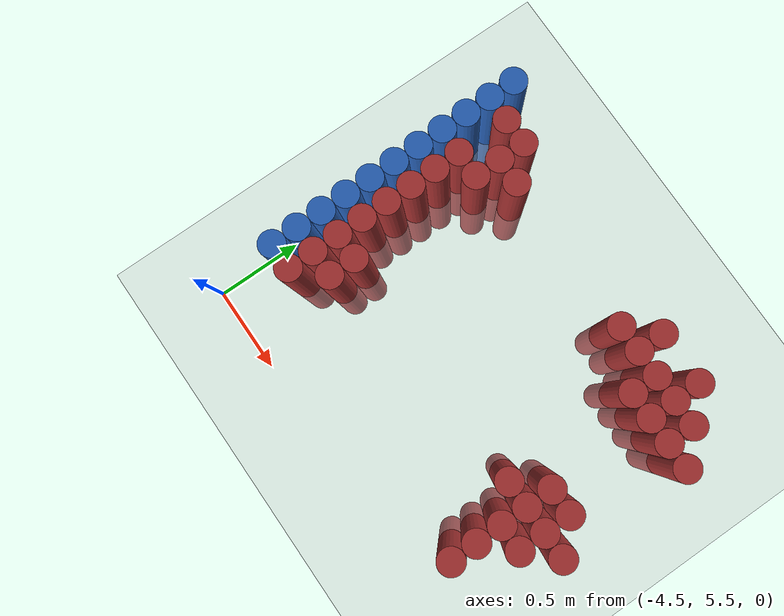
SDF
<sdf version="1.6">
 <world name="default">
  <model name="ground_plane">
   <static>1</static>
   <link name="link">
    <collision name="collision">
     <geometry><plane><normal>0 0 1</normal><size>100 100</size></plane></geometry>
     <surface><friction><ode><mu>100</mu><mu2>50</mu2></ode></friction></surface>
    </collision>
    <visual name="visual">
     <cast_shadows>0</cast_shadows>
     <geometry><plane><normal>0 0 1</normal><size>100 100</size></plane></geometry>
     <material>
      <script><uri>file://media/materials/scripts/gazebo.material</uri><name>Gazebo/Grey</name></script>
     </material>
    </visual>
   </link>
  </model>
  <model name="unit_cylinder_101">
   <static>1</static>
   <pose>-4.425000 5.925000 0.000000 0.000000 0.000000 0.000000</pose>
   <link name="link">
    <inertial>
     <mass>1</mass>
     <inertia><ixx>0.145833</ixx><ixy>0</ixy><ixz>0</ixz><iyy>0.145833</iyy><iyz>0</iyz><izz>0.125</izz></inertia>
    </inertial>
    <collision name="collision">
     <geometry><cylinder><radius>0.075000</radius><length>1</length></cylinder></geometry>
    </collision>
    <visual name="visual">
     <geometry><cylinder><radius>0.075000</radius><length>1</length></cylinder></geometry>
     <material>
      <ambient>0.152000 0.379000 0.720000 1</ambient>
      <diffuse>0.152000 0.379000 0.720000 1</diffuse>
     </material>
     <material>
      <script><name>Gazebo/Grey</name><uri>file://media/materials/scripts/gazebo.material</uri></script>
     </material>
    </visual>
   </link>
  </model>
  <model name="unit_cylinder_102">
   <static>1</static>
   <pose>-4.425000 6.075000 0.000000 0.000000 0.000000 0.000000</pose>
   <link name="link">
    <inertial>
     <mass>1</mass>
     <inertia><ixx>0.145833</ixx><ixy>0</ixy><ixz>0</ixz><iyy>0.145833</iyy><iyz>0</iyz><izz>0.125</izz></inertia>
    </inertial>
    <collision name="collision">
     <geometry><cylinder><radius>0.075000</radius><length>1</length></cylinder></geometry>
    </collision>
    <visual name="visual">
     <geometry><cylinder><radius>0.075000</radius><length>1</length></cylinder></geometry>
     <material>
      <ambient>0.152000 0.379000 0.720000 1</ambient>
      <diffuse>0.152000 0.379000 0.720000 1</diffuse>
     </material>
     <material>
      <script><name>Gazebo/Grey</name><uri>file://media/materials/scripts/gazebo.material</uri></script>
     </material>
    </visual>
   </link>
  </model>
  <model name="unit_cylinder_103">
   <static>1</static>
   <pose>-4.425000 6.225000 0.000000 0.000000 0.000000 0.000000</pose>
   <link name="link">
    <inertial>
     <mass>1</mass>
     <inertia><ixx>0.145833</ixx><ixy>0</ixy><ixz>0</ixz><iyy>0.145833</iyy><iyz>0</iyz><izz>0.125</izz></inertia>
    </inertial>
    <collision name="collision">
     <geometry><cylinder><radius>0.075000</radius><length>1</length></cylinder></geometry>
    </collision>
    <visual name="visual">
     <geometry><cylinder><radius>0.075000</radius><length>1</length></cylinder></geometry>
     <material>
      <ambient>0.152000 0.379000 0.720000 1</ambient>
      <diffuse>0.152000 0.379000 0.720000 1</diffuse>
     </material>
     <material>
      <script><name>Gazebo/Grey</name><uri>file://media/materials/scripts/gazebo.material</uri></script>
     </material>
    </visual>
   </link>
  </model>
  <model name="unit_cylinder_104">
   <static>1</static>
   <pose>-4.425000 6.375000 0.000000 0.000000 0.000000 0.000000</pose>
   <link name="link">
    <inertial>
     <mass>1</mass>
     <inertia><ixx>0.145833</ixx><ixy>0</ixy><ixz>0</ixz><iyy>0.145833</iyy><iyz>0</iyz><izz>0.125</izz></inertia>
    </inertial>
    <collision name="collision">
     <geometry><cylinder><radius>0.075000</radius><length>1</length></cylinder></geometry>
    </collision>
    <visual name="visual">
     <geometry><cylinder><radius>0.075000</radius><length>1</length></cylinder></geometry>
     <material>
      <ambient>0.152000 0.379000 0.720000 1</ambient>
      <diffuse>0.152000 0.379000 0.720000 1</diffuse>
     </material>
     <material>
      <script><name>Gazebo/Grey</name><uri>file://media/materials/scripts/gazebo.material</uri></script>
     </material>
    </visual>
   </link>
  </model>
  <model name="unit_cylinder_105">
   <static>1</static>
   <pose>-4.425000 6.525000 0.000000 0.000000 0.000000 0.000000</pose>
   <link name="link">
    <inertial>
     <mass>1</mass>
     <inertia><ixx>0.145833</ixx><ixy>0</ixy><ixz>0</ixz><iyy>0.145833</iyy><iyz>0</iyz><izz>0.125</izz></inertia>
    </inertial>
    <collision name="collision">
     <geometry><cylinder><radius>0.075000</radius><length>1</length></cylinder></geometry>
    </collision>
    <visual name="visual">
     <geometry><cylinder><radius>0.075000</radius><length>1</length></cylinder></geometry>
     <material>
      <ambient>0.152000 0.379000 0.720000 1</ambient>
      <diffuse>0.152000 0.379000 0.720000 1</diffuse>
     </material>
     <material>
      <script><name>Gazebo/Grey</name><uri>file://media/materials/scripts/gazebo.material</uri></script>
     </material>
    </visual>
   </link>
  </model>
  <model name="unit_cylinder_106">
   <static>1</static>
   <pose>-4.425000 6.675000 0.000000 0.000000 0.000000 0.000000</pose>
   <link name="link">
    <inertial>
     <mass>1</mass>
     <inertia><ixx>0.145833</ixx><ixy>0</ixy><ixz>0</ixz><iyy>0.145833</iyy><iyz>0</iyz><izz>0.125</izz></inertia>
    </inertial>
    <collision name="collision">
     <geometry><cylinder><radius>0.075000</radius><length>1</length></cylinder></geometry>
    </collision>
    <visual name="visual">
     <geometry><cylinder><radius>0.075000</radius><length>1</length></cylinder></geometry>
     <material>
      <ambient>0.152000 0.379000 0.720000 1</ambient>
      <diffuse>0.152000 0.379000 0.720000 1</diffuse>
     </material>
     <material>
      <script><name>Gazebo/Grey</name><uri>file://media/materials/scripts/gazebo.material</uri></script>
     </material>
    </visual>
   </link>
  </model>
  <model name="unit_cylinder_107">
   <static>1</static>
   <pose>-4.425000 6.825000 0.000000 0.000000 0.000000 0.000000</pose>
   <link name="link">
    <inertial>
     <mass>1</mass>
     <inertia><ixx>0.145833</ixx><ixy>0</ixy><ixz>0</ixz><iyy>0.145833</iyy><iyz>0</iyz><izz>0.125</izz></inertia>
    </inertial>
    <collision name="collision">
     <geometry><cylinder><radius>0.075000</radius><length>1</length></cylinder></geometry>
    </collision>
    <visual name="visual">
     <geometry><cylinder><radius>0.075000</radius><length>1</length></cylinder></geometry>
     <material>
      <ambient>0.152000 0.379000 0.720000 1</ambient>
      <diffuse>0.152000 0.379000 0.720000 1</diffuse>
     </material>
     <material>
      <script><name>Gazebo/Grey</name><uri>file://media/materials/scripts/gazebo.material</uri></script>
     </material>
    </visual>
   </link>
  </model>
  <model name="unit_cylinder_108">
   <static>1</static>
   <pose>-4.425000 6.975000 0.000000 0.000000 0.000000 0.000000</pose>
   <link name="link">
    <inertial>
     <mass>1</mass>
     <inertia><ixx>0.145833</ixx><ixy>0</ixy><ixz>0</ixz><iyy>0.145833</iyy><iyz>0</iyz><izz>0.125</izz></inertia>
    </inertial>
    <collision name="collision">
     <geometry><cylinder><radius>0.075000</radius><length>1</length></cylinder></geometry>
    </collision>
    <visual name="visual">
     <geometry><cylinder><radius>0.075000</radius><length>1</length></cylinder></geometry>
     <material>
      <ambient>0.152000 0.379000 0.720000 1</ambient>
      <diffuse>0.152000 0.379000 0.720000 1</diffuse>
     </material>
     <material>
      <script><name>Gazebo/Grey</name><uri>file://media/materials/scripts/gazebo.material</uri></script>
     </material>
    </visual>
   </link>
  </model>
  <model name="unit_cylinder_109">
   <static>1</static>
   <pose>-4.425000 7.125000 0.000000 0.000000 0.000000 0.000000</pose>
   <link name="link">
    <inertial>
     <mass>1</mass>
     <inertia><ixx>0.145833</ixx><ixy>0</ixy><ixz>0</ixz><iyy>0.145833</iyy><iyz>0</iyz><izz>0.125</izz></inertia>
    </inertial>
    <collision name="collision">
     <geometry><cylinder><radius>0.075000</radius><length>1</length></cylinder></geometry>
    </collision>
    <visual name="visual">
     <geometry><cylinder><radius>0.075000</radius><length>1</length></cylinder></geometry>
     <material>
      <ambient>0.152000 0.379000 0.720000 1</ambient>
      <diffuse>0.152000 0.379000 0.720000 1</diffuse>
     </material>
     <material>
      <script><name>Gazebo/Grey</name><uri>file://media/materials/scripts/gazebo.material</uri></script>
     </material>
    </visual>
   </link>
  </model>
  <model name="unit_cylinder_110">
   <static>1</static>
   <pose>-4.425000 7.275000 0.000000 0.000000 0.000000 0.000000</pose>
   <link name="link">
    <inertial>
     <mass>1</mass>
     <inertia><ixx>0.145833</ixx><ixy>0</ixy><ixz>0</ixz><iyy>0.145833</iyy><iyz>0</iyz><izz>0.125</izz></inertia>
    </inertial>
    <collision name="collision">
     <geometry><cylinder><radius>0.075000</radius><length>1</length></cylinder></geometry>
    </collision>
    <visual name="visual">
     <geometry><cylinder><radius>0.075000</radius><length>1</length></cylinder></geometry>
     <material>
      <ambient>0.152000 0.379000 0.720000 1</ambient>
      <diffuse>0.152000 0.379000 0.720000 1</diffuse>
     </material>
     <material>
      <script><name>Gazebo/Grey</name><uri>file://media/materials/scripts/gazebo.material</uri></script>
     </material>
    </visual>
   </link>
  </model>
  <model name="unit_cylinder_111">
   <static>1</static>
   <pose>-4.425000 7.425000 0.000000 0.000000 0.000000 0.000000</pose>
   <link name="link">
    <inertial>
     <mass>1</mass>
     <inertia><ixx>0.145833</ixx><ixy>0</ixy><ixz>0</ixz><iyy>0.145833</iyy><iyz>0</iyz><izz>0.125</izz></inertia>
    </inertial>
    <collision name="collision">
     <geometry><cylinder><radius>0.075000</radius><length>1</length></cylinder></geometry>
    </collision>
    <visual name="visual">
     <geometry><cylinder><radius>0.075000</radius><length>1</length></cylinder></geometry>
     <material>
      <ambient>0.152000 0.379000 0.720000 1</ambient>
      <diffuse>0.152000 0.379000 0.720000 1</diffuse>
     </material>
     <material>
      <script><name>Gazebo/Grey</name><uri>file://media/materials/scripts/gazebo.material</uri></script>
     </material>
    </visual>
   </link>
  </model>
  <model name="unit_cylinder_129">
   <static>1</static>
   <pose>-4.275000 5.925000 0.000000 0.000000 0.000000 0.000000</pose>
   <link name="link">
    <inertial>
     <mass>1</mass>
     <inertia><ixx>0.145833</ixx><ixy>0</ixy><ixz>0</ixz><iyy>0.145833</iyy><iyz>0</iyz><izz>0.125</izz></inertia>
    </inertial>
    <collision name="collision">
     <geometry><cylinder><radius>0.075000</radius><length>1</length></cylinder></geometry>
    </collision>
    <visual name="visual">
     <geometry><cylinder><radius>0.075000</radius><length>1</length></cylinder></geometry>
     <material>
      <ambient>0.648000 0.192000 0.192000 1</ambient>
      <diffuse>0.648000 0.192000 0.192000 1</diffuse>
     </material>
     <material>
      <script><name>Gazebo/Grey</name><uri>file://media/materials/scripts/gazebo.material</uri></script>
     </material>
    </visual>
   </link>
  </model>
  <model name="unit_cylinder_130">
   <static>1</static>
   <pose>-4.275000 6.075000 0.000000 0.000000 0.000000 0.000000</pose>
   <link name="link">
    <inertial>
     <mass>1</mass>
     <inertia><ixx>0.145833</ixx><ixy>0</ixy><ixz>0</ixz><iyy>0.145833</iyy><iyz>0</iyz><izz>0.125</izz></inertia>
    </inertial>
    <collision name="collision">
     <geometry><cylinder><radius>0.075000</radius><length>1</length></cylinder></geometry>
    </collision>
    <visual name="visual">
     <geometry><cylinder><radius>0.075000</radius><length>1</length></cylinder></geometry>
     <material>
      <ambient>0.648000 0.192000 0.192000 1</ambient>
      <diffuse>0.648000 0.192000 0.192000 1</diffuse>
     </material>
     <material>
      <script><name>Gazebo/Grey</name><uri>file://media/materials/scripts/gazebo.material</uri></script>
     </material>
    </visual>
   </link>
  </model>
  <model name="unit_cylinder_131">
   <static>1</static>
   <pose>-4.275000 6.225000 0.000000 0.000000 0.000000 0.000000</pose>
   <link name="link">
    <inertial>
     <mass>1</mass>
     <inertia><ixx>0.145833</ixx><ixy>0</ixy><ixz>0</ixz><iyy>0.145833</iyy><iyz>0</iyz><izz>0.125</izz></inertia>
    </inertial>
    <collision name="collision">
     <geometry><cylinder><radius>0.075000</radius><length>1</length></cylinder></geometry>
    </collision>
    <visual name="visual">
     <geometry><cylinder><radius>0.075000</radius><length>1</length></cylinder></geometry>
     <material>
      <ambient>0.648000 0.192000 0.192000 1</ambient>
      <diffuse>0.648000 0.192000 0.192000 1</diffuse>
     </material>
     <material>
      <script><name>Gazebo/Grey</name><uri>file://media/materials/scripts/gazebo.material</uri></script>
     </material>
    </visual>
   </link>
  </model>
  <model name="unit_cylinder_132">
   <static>1</static>
   <pose>-4.275000 6.375000 0.000000 0.000000 0.000000 0.000000</pose>
   <link name="link">
    <inertial>
     <mass>1</mass>
     <inertia><ixx>0.145833</ixx><ixy>0</ixy><ixz>0</ixz><iyy>0.145833</iyy><iyz>0</iyz><izz>0.125</izz></inertia>
    </inertial>
    <collision name="collision">
     <geometry><cylinder><radius>0.075000</radius><length>1</length></cylinder></geometry>
    </collision>
    <visual name="visual">
     <geometry><cylinder><radius>0.075000</radius><length>1</length></cylinder></geometry>
     <material>
      <ambient>0.648000 0.192000 0.192000 1</ambient>
      <diffuse>0.648000 0.192000 0.192000 1</diffuse>
     </material>
     <material>
      <script><name>Gazebo/Grey</name><uri>file://media/materials/scripts/gazebo.material</uri></script>
     </material>
    </visual>
   </link>
  </model>
  <model name="unit_cylinder_133">
   <static>1</static>
   <pose>-4.275000 6.525000 0.000000 0.000000 0.000000 0.000000</pose>
   <link name="link">
    <inertial>
     <mass>1</mass>
     <inertia><ixx>0.145833</ixx><ixy>0</ixy><ixz>0</ixz><iyy>0.145833</iyy><iyz>0</iyz><izz>0.125</izz></inertia>
    </inertial>
    <collision name="collision">
     <geometry><cylinder><radius>0.075000</radius><length>1</length></cylinder></geometry>
    </collision>
    <visual name="visual">
     <geometry><cylinder><radius>0.075000</radius><length>1</length></cylinder></geometry>
     <material>
      <ambient>0.648000 0.192000 0.192000 1</ambient>
      <diffuse>0.648000 0.192000 0.192000 1</diffuse>
     </material>
     <material>
      <script><name>Gazebo/Grey</name><uri>file://media/materials/scripts/gazebo.material</uri></script>
     </material>
    </visual>
   </link>
  </model>
  <model name="unit_cylinder_134">
   <static>1</static>
   <pose>-4.275000 6.675000 0.000000 0.000000 0.000000 0.000000</pose>
   <link name="link">
    <inertial>
     <mass>1</mass>
     <inertia><ixx>0.145833</ixx><ixy>0</ixy><ixz>0</ixz><iyy>0.145833</iyy><iyz>0</iyz><izz>0.125</izz></inertia>
    </inertial>
    <collision name="collision">
     <geometry><cylinder><radius>0.075000</radius><length>1</length></cylinder></geometry>
    </collision>
    <visual name="visual">
     <geometry><cylinder><radius>0.075000</radius><length>1</length></cylinder></geometry>
     <material>
      <ambient>0.648000 0.192000 0.192000 1</ambient>
      <diffuse>0.648000 0.192000 0.192000 1</diffuse>
     </material>
     <material>
      <script><name>Gazebo/Grey</name><uri>file://media/materials/scripts/gazebo.material</uri></script>
     </material>
    </visual>
   </link>
  </model>
  <model name="unit_cylinder_135">
   <static>1</static>
   <pose>-4.275000 6.825000 0.000000 0.000000 0.000000 0.000000</pose>
   <link name="link">
    <inertial>
     <mass>1</mass>
     <inertia><ixx>0.145833</ixx><ixy>0</ixy><ixz>0</ixz><iyy>0.145833</iyy><iyz>0</iyz><izz>0.125</izz></inertia>
    </inertial>
    <collision name="collision">
     <geometry><cylinder><radius>0.075000</radius><length>1</length></cylinder></geometry>
    </collision>
    <visual name="visual">
     <geometry><cylinder><radius>0.075000</radius><length>1</length></cylinder></geometry>
     <material>
      <ambient>0.648000 0.192000 0.192000 1</ambient>
      <diffuse>0.648000 0.192000 0.192000 1</diffuse>
     </material>
     <material>
      <script><name>Gazebo/Grey</name><uri>file://media/materials/scripts/gazebo.material</uri></script>
     </material>
    </visual>
   </link>
  </model>
  <model name="unit_cylinder_136">
   <static>1</static>
   <pose>-4.275000 6.975000 0.000000 0.000000 0.000000 0.000000</pose>
   <link name="link">
    <inertial>
     <mass>1</mass>
     <inertia><ixx>0.145833</ixx><ixy>0</ixy><ixz>0</ixz><iyy>0.145833</iyy><iyz>0</iyz><izz>0.125</izz></inertia>
    </inertial>
    <collision name="collision">
     <geometry><cylinder><radius>0.075000</radius><length>1</length></cylinder></geometry>
    </collision>
    <visual name="visual">
     <geometry><cylinder><radius>0.075000</radius><length>1</length></cylinder></geometry>
     <material>
      <ambient>0.648000 0.192000 0.192000 1</ambient>
      <diffuse>0.648000 0.192000 0.192000 1</diffuse>
     </material>
     <material>
      <script><name>Gazebo/Grey</name><uri>file://media/materials/scripts/gazebo.material</uri></script>
     </material>
    </visual>
   </link>
  </model>
  <model name="unit_cylinder_137">
   <static>1</static>
   <pose>-4.275000 7.275000 0.000000 0.000000 0.000000 0.000000</pose>
   <link name="link">
    <inertial>
     <mass>1</mass>
     <inertia><ixx>0.145833</ixx><ixy>0</ixy><ixz>0</ixz><iyy>0.145833</iyy><iyz>0</iyz><izz>0.125</izz></inertia>
    </inertial>
    <collision name="collision">
     <geometry><cylinder><radius>0.075000</radius><length>1</length></cylinder></geometry>
    </collision>
    <visual name="visual">
     <geometry><cylinder><radius>0.075000</radius><length>1</length></cylinder></geometry>
     <material>
      <ambient>0.648000 0.192000 0.192000 1</ambient>
      <diffuse>0.648000 0.192000 0.192000 1</diffuse>
     </material>
     <material>
      <script><name>Gazebo/Grey</name><uri>file://media/materials/scripts/gazebo.material</uri></script>
     </material>
    </visual>
   </link>
  </model>
  <model name="unit_cylinder_149">
   <static>1</static>
   <pose>-4.125000 6.075000 0.000000 0.000000 0.000000 0.000000</pose>
   <link name="link">
    <inertial>
     <mass>1</mass>
     <inertia><ixx>0.145833</ixx><ixy>0</ixy><ixz>0</ixz><iyy>0.145833</iyy><iyz>0</iyz><izz>0.125</izz></inertia>
    </inertial>
    <collision name="collision">
     <geometry><cylinder><radius>0.075000</radius><length>1</length></cylinder></geometry>
    </collision>
    <visual name="visual">
     <geometry><cylinder><radius>0.075000</radius><length>1</length></cylinder></geometry>
     <material>
      <ambient>0.648000 0.192000 0.192000 1</ambient>
      <diffuse>0.648000 0.192000 0.192000 1</diffuse>
     </material>
     <material>
      <script><name>Gazebo/Grey</name><uri>file://media/materials/scripts/gazebo.material</uri></script>
     </material>
    </visual>
   </link>
  </model>
  <model name="unit_cylinder_150">
   <static>1</static>
   <pose>-4.125000 6.225000 0.000000 0.000000 0.000000 0.000000</pose>
   <link name="link">
    <inertial>
     <mass>1</mass>
     <inertia><ixx>0.145833</ixx><ixy>0</ixy><ixz>0</ixz><iyy>0.145833</iyy><iyz>0</iyz><izz>0.125</izz></inertia>
    </inertial>
    <collision name="collision">
     <geometry><cylinder><radius>0.075000</radius><length>1</length></cylinder></geometry>
    </collision>
    <visual name="visual">
     <geometry><cylinder><radius>0.075000</radius><length>1</length></cylinder></geometry>
     <material>
      <ambient>0.648000 0.192000 0.192000 1</ambient>
      <diffuse>0.648000 0.192000 0.192000 1</diffuse>
     </material>
     <material>
      <script><name>Gazebo/Grey</name><uri>file://media/materials/scripts/gazebo.material</uri></script>
     </material>
    </visual>
   </link>
  </model>
  <model name="unit_cylinder_151">
   <static>1</static>
   <pose>-4.125000 6.975000 0.000000 0.000000 0.000000 0.000000</pose>
   <link name="link">
    <inertial>
     <mass>1</mass>
     <inertia><ixx>0.145833</ixx><ixy>0</ixy><ixz>0</ixz><iyy>0.145833</iyy><iyz>0</iyz><izz>0.125</izz></inertia>
    </inertial>
    <collision name="collision">
     <geometry><cylinder><radius>0.075000</radius><length>1</length></cylinder></geometry>
    </collision>
    <visual name="visual">
     <geometry><cylinder><radius>0.075000</radius><length>1</length></cylinder></geometry>
     <material>
      <ambient>0.648000 0.192000 0.192000 1</ambient>
      <diffuse>0.648000 0.192000 0.192000 1</diffuse>
     </material>
     <material>
      <script><name>Gazebo/Grey</name><uri>file://media/materials/scripts/gazebo.material</uri></script>
     </material>
    </visual>
   </link>
  </model>
  <model name="unit_cylinder_152">
   <static>1</static>
   <pose>-4.125000 7.125000 0.000000 0.000000 0.000000 0.000000</pose>
   <link name="link">
    <inertial>
     <mass>1</mass>
     <inertia><ixx>0.145833</ixx><ixy>0</ixy><ixz>0</ixz><iyy>0.145833</iyy><iyz>0</iyz><izz>0.125</izz></inertia>
    </inertial>
    <collision name="collision">
     <geometry><cylinder><radius>0.075000</radius><length>1</length></cylinder></geometry>
    </collision>
    <visual name="visual">
     <geometry><cylinder><radius>0.075000</radius><length>1</length></cylinder></geometry>
     <material>
      <ambient>0.648000 0.192000 0.192000 1</ambient>
      <diffuse>0.648000 0.192000 0.192000 1</diffuse>
     </material>
     <material>
      <script><name>Gazebo/Grey</name><uri>file://media/materials/scripts/gazebo.material</uri></script>
     </material>
    </visual>
   </link>
  </model>
  <model name="unit_cylinder_153">
   <static>1</static>
   <pose>-4.125000 7.275000 0.000000 0.000000 0.000000 0.000000</pose>
   <link name="link">
    <inertial>
     <mass>1</mass>
     <inertia><ixx>0.145833</ixx><ixy>0</ixy><ixz>0</ixz><iyy>0.145833</iyy><iyz>0</iyz><izz>0.125</izz></inertia>
    </inertial>
    <collision name="collision">
     <geometry><cylinder><radius>0.075000</radius><length>1</length></cylinder></geometry>
    </collision>
    <visual name="visual">
     <geometry><cylinder><radius>0.075000</radius><length>1</length></cylinder></geometry>
     <material>
      <ambient>0.648000 0.192000 0.192000 1</ambient>
      <diffuse>0.648000 0.192000 0.192000 1</diffuse>
     </material>
     <material>
      <script><name>Gazebo/Grey</name><uri>file://media/materials/scripts/gazebo.material</uri></script>
     </material>
    </visual>
   </link>
  </model>
  <model name="unit_cylinder_158">
   <static>1</static>
   <pose>-3.975000 7.125000 0.000000 0.000000 0.000000 0.000000</pose>
   <link name="link">
    <inertial>
     <mass>1</mass>
     <inertia><ixx>0.145833</ixx><ixy>0</ixy><ixz>0</ixz><iyy>0.145833</iyy><iyz>0</iyz><izz>0.125</izz></inertia>
    </inertial>
    <collision name="collision">
     <geometry><cylinder><radius>0.075000</radius><length>1</length></cylinder></geometry>
    </collision>
    <visual name="visual">
     <geometry><cylinder><radius>0.075000</radius><length>1</length></cylinder></geometry>
     <material>
      <ambient>0.648000 0.192000 0.192000 1</ambient>
      <diffuse>0.648000 0.192000 0.192000 1</diffuse>
     </material>
     <material>
      <script><name>Gazebo/Grey</name><uri>file://media/materials/scripts/gazebo.material</uri></script>
     </material>
    </visual>
   </link>
  </model>
  <model name="unit_cylinder_161">
   <static>1</static>
   <pose>-3.075000 7.125000 0.000000 0.000000 0.000000 0.000000</pose>
   <link name="link">
    <inertial>
     <mass>1</mass>
     <inertia><ixx>0.145833</ixx><ixy>0</ixy><ixz>0</ixz><iyy>0.145833</iyy><iyz>0</iyz><izz>0.125</izz></inertia>
    </inertial>
    <collision name="collision">
     <geometry><cylinder><radius>0.075000</radius><length>1</length></cylinder></geometry>
    </collision>
    <visual name="visual">
     <geometry><cylinder><radius>0.075000</radius><length>1</length></cylinder></geometry>
     <material>
      <ambient>0.648000 0.192000 0.192000 1</ambient>
      <diffuse>0.648000 0.192000 0.192000 1</diffuse>
     </material>
     <material>
      <script><name>Gazebo/Grey</name><uri>file://media/materials/scripts/gazebo.material</uri></script>
     </material>
    </visual>
   </link>
  </model>
  <model name="unit_cylinder_167">
   <static>1</static>
   <pose>-2.925000 7.125000 0.000000 0.000000 0.000000 0.000000</pose>
   <link name="link">
    <inertial>
     <mass>1</mass>
     <inertia><ixx>0.145833</ixx><ixy>0</ixy><ixz>0</ixz><iyy>0.145833</iyy><iyz>0</iyz><izz>0.125</izz></inertia>
    </inertial>
    <collision name="collision">
     <geometry><cylinder><radius>0.075000</radius><length>1</length></cylinder></geometry>
    </collision>
    <visual name="visual">
     <geometry><cylinder><radius>0.075000</radius><length>1</length></cylinder></geometry>
     <material>
      <ambient>0.648000 0.192000 0.192000 1</ambient>
      <diffuse>0.648000 0.192000 0.192000 1</diffuse>
     </material>
     <material>
      <script><name>Gazebo/Grey</name><uri>file://media/materials/scripts/gazebo.material</uri></script>
     </material>
    </visual>
   </link>
  </model>
  <model name="unit_cylinder_168">
   <static>1</static>
   <pose>-2.925000 7.275000 0.000000 0.000000 0.000000 0.000000</pose>
   <link name="link">
    <inertial>
     <mass>1</mass>
     <inertia><ixx>0.145833</ixx><ixy>0</ixy><ixz>0</ixz><iyy>0.145833</iyy><iyz>0</iyz><izz>0.125</izz></inertia>
    </inertial>
    <collision name="collision">
     <geometry><cylinder><radius>0.075000</radius><length>1</length></cylinder></geometry>
    </collision>
    <visual name="visual">
     <geometry><cylinder><radius>0.075000</radius><length>1</length></cylinder></geometry>
     <material>
      <ambient>0.648000 0.192000 0.192000 1</ambient>
      <diffuse>0.648000 0.192000 0.192000 1</diffuse>
     </material>
     <material>
      <script><name>Gazebo/Grey</name><uri>file://media/materials/scripts/gazebo.material</uri></script>
     </material>
    </visual>
   </link>
  </model>
  <model name="unit_cylinder_176">
   <static>1</static>
   <pose>-2.775000 6.225000 0.000000 0.000000 0.000000 0.000000</pose>
   <link name="link">
    <inertial>
     <mass>1</mass>
     <inertia><ixx>0.145833</ixx><ixy>0</ixy><ixz>0</ixz><iyy>0.145833</iyy><iyz>0</iyz><izz>0.125</izz></inertia>
    </inertial>
    <collision name="collision">
     <geometry><cylinder><radius>0.075000</radius><length>1</length></cylinder></geometry>
    </collision>
    <visual name="visual">
     <geometry><cylinder><radius>0.075000</radius><length>1</length></cylinder></geometry>
     <material>
      <ambient>0.648000 0.192000 0.192000 1</ambient>
      <diffuse>0.648000 0.192000 0.192000 1</diffuse>
     </material>
     <material>
      <script><name>Gazebo/Grey</name><uri>file://media/materials/scripts/gazebo.material</uri></script>
     </material>
    </visual>
   </link>
  </model>
  <model name="unit_cylinder_177">
   <static>1</static>
   <pose>-2.775000 6.975000 0.000000 0.000000 0.000000 0.000000</pose>
   <link name="link">
    <inertial>
     <mass>1</mass>
     <inertia><ixx>0.145833</ixx><ixy>0</ixy><ixz>0</ixz><iyy>0.145833</iyy><iyz>0</iyz><izz>0.125</izz></inertia>
    </inertial>
    <collision name="collision">
     <geometry><cylinder><radius>0.075000</radius><length>1</length></cylinder></geometry>
    </collision>
    <visual name="visual">
     <geometry><cylinder><radius>0.075000</radius><length>1</length></cylinder></geometry>
     <material>
      <ambient>0.648000 0.192000 0.192000 1</ambient>
      <diffuse>0.648000 0.192000 0.192000 1</diffuse>
     </material>
     <material>
      <script><name>Gazebo/Grey</name><uri>file://media/materials/scripts/gazebo.material</uri></script>
     </material>
    </visual>
   </link>
  </model>
  <model name="unit_cylinder_178">
   <static>1</static>
   <pose>-2.775000 7.125000 0.000000 0.000000 0.000000 0.000000</pose>
   <link name="link">
    <inertial>
     <mass>1</mass>
     <inertia><ixx>0.145833</ixx><ixy>0</ixy><ixz>0</ixz><iyy>0.145833</iyy><iyz>0</iyz><izz>0.125</izz></inertia>
    </inertial>
    <collision name="collision">
     <geometry><cylinder><radius>0.075000</radius><length>1</length></cylinder></geometry>
    </collision>
    <visual name="visual">
     <geometry><cylinder><radius>0.075000</radius><length>1</length></cylinder></geometry>
     <material>
      <ambient>0.648000 0.192000 0.192000 1</ambient>
      <diffuse>0.648000 0.192000 0.192000 1</diffuse>
     </material>
     <material>
      <script><name>Gazebo/Grey</name><uri>file://media/materials/scripts/gazebo.material</uri></script>
     </material>
    </visual>
   </link>
  </model>
  <model name="unit_cylinder_185">
   <static>1</static>
   <pose>-2.625000 5.775000 0.000000 0.000000 0.000000 0.000000</pose>
   <link name="link">
    <inertial>
     <mass>1</mass>
     <inertia><ixx>0.145833</ixx><ixy>0</ixy><ixz>0</ixz><iyy>0.145833</iyy><iyz>0</iyz><izz>0.125</izz></inertia>
    </inertial>
    <collision name="collision">
     <geometry><cylinder><radius>0.075000</radius><length>1</length></cylinder></geometry>
    </collision>
    <visual name="visual">
     <geometry><cylinder><radius>0.075000</radius><length>1</length></cylinder></geometry>
     <material>
      <ambient>0.648000 0.192000 0.192000 1</ambient>
      <diffuse>0.648000 0.192000 0.192000 1</diffuse>
     </material>
     <material>
      <script><name>Gazebo/Grey</name><uri>file://media/materials/scripts/gazebo.material</uri></script>
     </material>
    </visual>
   </link>
  </model>
  <model name="unit_cylinder_186">
   <static>1</static>
   <pose>-2.625000 5.925000 0.000000 0.000000 0.000000 0.000000</pose>
   <link name="link">
    <inertial>
     <mass>1</mass>
     <inertia><ixx>0.145833</ixx><ixy>0</ixy><ixz>0</ixz><iyy>0.145833</iyy><iyz>0</iyz><izz>0.125</izz></inertia>
    </inertial>
    <collision name="collision">
     <geometry><cylinder><radius>0.075000</radius><length>1</length></cylinder></geometry>
    </collision>
    <visual name="visual">
     <geometry><cylinder><radius>0.075000</radius><length>1</length></cylinder></geometry>
     <material>
      <ambient>0.648000 0.192000 0.192000 1</ambient>
      <diffuse>0.648000 0.192000 0.192000 1</diffuse>
     </material>
     <material>
      <script><name>Gazebo/Grey</name><uri>file://media/materials/scripts/gazebo.material</uri></script>
     </material>
    </visual>
   </link>
  </model>
  <model name="unit_cylinder_187">
   <static>1</static>
   <pose>-2.625000 6.075000 0.000000 0.000000 0.000000 0.000000</pose>
   <link name="link">
    <inertial>
     <mass>1</mass>
     <inertia><ixx>0.145833</ixx><ixy>0</ixy><ixz>0</ixz><iyy>0.145833</iyy><iyz>0</iyz><izz>0.125</izz></inertia>
    </inertial>
    <collision name="collision">
     <geometry><cylinder><radius>0.075000</radius><length>1</length></cylinder></geometry>
    </collision>
    <visual name="visual">
     <geometry><cylinder><radius>0.075000</radius><length>1</length></cylinder></geometry>
     <material>
      <ambient>0.648000 0.192000 0.192000 1</ambient>
      <diffuse>0.648000 0.192000 0.192000 1</diffuse>
     </material>
     <material>
      <script><name>Gazebo/Grey</name><uri>file://media/materials/scripts/gazebo.material</uri></script>
     </material>
    </visual>
   </link>
  </model>
  <model name="unit_cylinder_188">
   <static>1</static>
   <pose>-2.625000 6.225000 0.000000 0.000000 0.000000 0.000000</pose>
   <link name="link">
    <inertial>
     <mass>1</mass>
     <inertia><ixx>0.145833</ixx><ixy>0</ixy><ixz>0</ixz><iyy>0.145833</iyy><iyz>0</iyz><izz>0.125</izz></inertia>
    </inertial>
    <collision name="collision">
     <geometry><cylinder><radius>0.075000</radius><length>1</length></cylinder></geometry>
    </collision>
    <visual name="visual">
     <geometry><cylinder><radius>0.075000</radius><length>1</length></cylinder></geometry>
     <material>
      <ambient>0.648000 0.192000 0.192000 1</ambient>
      <diffuse>0.648000 0.192000 0.192000 1</diffuse>
     </material>
     <material>
      <script><name>Gazebo/Grey</name><uri>file://media/materials/scripts/gazebo.material</uri></script>
     </material>
    </visual>
   </link>
  </model>
  <model name="unit_cylinder_189">
   <static>1</static>
   <pose>-2.625000 6.375000 0.000000 0.000000 0.000000 0.000000</pose>
   <link name="link">
    <inertial>
     <mass>1</mass>
     <inertia><ixx>0.145833</ixx><ixy>0</ixy><ixz>0</ixz><iyy>0.145833</iyy><iyz>0</iyz><izz>0.125</izz></inertia>
    </inertial>
    <collision name="collision">
     <geometry><cylinder><radius>0.075000</radius><length>1</length></cylinder></geometry>
    </collision>
    <visual name="visual">
     <geometry><cylinder><radius>0.075000</radius><length>1</length></cylinder></geometry>
     <material>
      <ambient>0.648000 0.192000 0.192000 1</ambient>
      <diffuse>0.648000 0.192000 0.192000 1</diffuse>
     </material>
     <material>
      <script><name>Gazebo/Grey</name><uri>file://media/materials/scripts/gazebo.material</uri></script>
     </material>
    </visual>
   </link>
  </model>
  <model name="unit_cylinder_190">
   <static>1</static>
   <pose>-2.625000 6.975000 0.000000 0.000000 0.000000 0.000000</pose>
   <link name="link">
    <inertial>
     <mass>1</mass>
     <inertia><ixx>0.145833</ixx><ixy>0</ixy><ixz>0</ixz><iyy>0.145833</iyy><iyz>0</iyz><izz>0.125</izz></inertia>
    </inertial>
    <collision name="collision">
     <geometry><cylinder><radius>0.075000</radius><length>1</length></cylinder></geometry>
    </collision>
    <visual name="visual">
     <geometry><cylinder><radius>0.075000</radius><length>1</length></cylinder></geometry>
     <material>
      <ambient>0.648000 0.192000 0.192000 1</ambient>
      <diffuse>0.648000 0.192000 0.192000 1</diffuse>
     </material>
     <material>
      <script><name>Gazebo/Grey</name><uri>file://media/materials/scripts/gazebo.material</uri></script>
     </material>
    </visual>
   </link>
  </model>
  <model name="unit_cylinder_191">
   <static>1</static>
   <pose>-2.625000 7.125000 0.000000 0.000000 0.000000 0.000000</pose>
   <link name="link">
    <inertial>
     <mass>1</mass>
     <inertia><ixx>0.145833</ixx><ixy>0</ixy><ixz>0</ixz><iyy>0.145833</iyy><iyz>0</iyz><izz>0.125</izz></inertia>
    </inertial>
    <collision name="collision">
     <geometry><cylinder><radius>0.075000</radius><length>1</length></cylinder></geometry>
    </collision>
    <visual name="visual">
     <geometry><cylinder><radius>0.075000</radius><length>1</length></cylinder></geometry>
     <material>
      <ambient>0.648000 0.192000 0.192000 1</ambient>
      <diffuse>0.648000 0.192000 0.192000 1</diffuse>
     </material>
     <material>
      <script><name>Gazebo/Grey</name><uri>file://media/materials/scripts/gazebo.material</uri></script>
     </material>
    </visual>
   </link>
  </model>
  <model name="unit_cylinder_192">
   <static>1</static>
   <pose>-2.625000 7.275000 0.000000 0.000000 0.000000 0.000000</pose>
   <link name="link">
    <inertial>
     <mass>1</mass>
     <inertia><ixx>0.145833</ixx><ixy>0</ixy><ixz>0</ixz><iyy>0.145833</iyy><iyz>0</iyz><izz>0.125</izz></inertia>
    </inertial>
    <collision name="collision">
     <geometry><cylinder><radius>0.075000</radius><length>1</length></cylinder></geometry>
    </collision>
    <visual name="visual">
     <geometry><cylinder><radius>0.075000</radius><length>1</length></cylinder></geometry>
     <material>
      <ambient>0.648000 0.192000 0.192000 1</ambient>
      <diffuse>0.648000 0.192000 0.192000 1</diffuse>
     </material>
     <material>
      <script><name>Gazebo/Grey</name><uri>file://media/materials/scripts/gazebo.material</uri></script>
     </material>
    </visual>
   </link>
  </model>
  <model name="unit_cylinder_202">
   <static>1</static>
   <pose>-2.475000 6.075000 0.000000 0.000000 0.000000 0.000000</pose>
   <link name="link">
    <inertial>
     <mass>1</mass>
     <inertia><ixx>0.145833</ixx><ixy>0</ixy><ixz>0</ixz><iyy>0.145833</iyy><iyz>0</iyz><izz>0.125</izz></inertia>
    </inertial>
    <collision name="collision">
     <geometry><cylinder><radius>0.075000</radius><length>1</length></cylinder></geometry>
    </collision>
    <visual name="visual">
     <geometry><cylinder><radius>0.075000</radius><length>1</length></cylinder></geometry>
     <material>
      <ambient>0.648000 0.192000 0.192000 1</ambient>
      <diffuse>0.648000 0.192000 0.192000 1</diffuse>
     </material>
     <material>
      <script><name>Gazebo/Grey</name><uri>file://media/materials/scripts/gazebo.material</uri></script>
     </material>
    </visual>
   </link>
  </model>
  <model name="unit_cylinder_203">
   <static>1</static>
   <pose>-2.475000 6.225000 0.000000 0.000000 0.000000 0.000000</pose>
   <link name="link">
    <inertial>
     <mass>1</mass>
     <inertia><ixx>0.145833</ixx><ixy>0</ixy><ixz>0</ixz><iyy>0.145833</iyy><iyz>0</iyz><izz>0.125</izz></inertia>
    </inertial>
    <collision name="collision">
     <geometry><cylinder><radius>0.075000</radius><length>1</length></cylinder></geometry>
    </collision>
    <visual name="visual">
     <geometry><cylinder><radius>0.075000</radius><length>1</length></cylinder></geometry>
     <material>
      <ambient>0.648000 0.192000 0.192000 1</ambient>
      <diffuse>0.648000 0.192000 0.192000 1</diffuse>
     </material>
     <material>
      <script><name>Gazebo/Grey</name><uri>file://media/materials/scripts/gazebo.material</uri></script>
     </material>
    </visual>
   </link>
  </model>
  <model name="unit_cylinder_204">
   <static>1</static>
   <pose>-2.475000 6.375000 0.000000 0.000000 0.000000 0.000000</pose>
   <link name="link">
    <inertial>
     <mass>1</mass>
     <inertia><ixx>0.145833</ixx><ixy>0</ixy><ixz>0</ixz><iyy>0.145833</iyy><iyz>0</iyz><izz>0.125</izz></inertia>
    </inertial>
    <collision name="collision">
     <geometry><cylinder><radius>0.075000</radius><length>1</length></cylinder></geometry>
    </collision>
    <visual name="visual">
     <geometry><cylinder><radius>0.075000</radius><length>1</length></cylinder></geometry>
     <material>
      <ambient>0.648000 0.192000 0.192000 1</ambient>
      <diffuse>0.648000 0.192000 0.192000 1</diffuse>
     </material>
     <material>
      <script><name>Gazebo/Grey</name><uri>file://media/materials/scripts/gazebo.material</uri></script>
     </material>
    </visual>
   </link>
  </model>
  <model name="unit_cylinder_205">
   <static>1</static>
   <pose>-2.475000 6.975000 0.000000 0.000000 0.000000 0.000000</pose>
   <link name="link">
    <inertial>
     <mass>1</mass>
     <inertia><ixx>0.145833</ixx><ixy>0</ixy><ixz>0</ixz><iyy>0.145833</iyy><iyz>0</iyz><izz>0.125</izz></inertia>
    </inertial>
    <collision name="collision">
     <geometry><cylinder><radius>0.075000</radius><length>1</length></cylinder></geometry>
    </collision>
    <visual name="visual">
     <geometry><cylinder><radius>0.075000</radius><length>1</length></cylinder></geometry>
     <material>
      <ambient>0.648000 0.192000 0.192000 1</ambient>
      <diffuse>0.648000 0.192000 0.192000 1</diffuse>
     </material>
     <material>
      <script><name>Gazebo/Grey</name><uri>file://media/materials/scripts/gazebo.material</uri></script>
     </material>
    </visual>
   </link>
  </model>
  <model name="unit_cylinder_206">
   <static>1</static>
   <pose>-2.475000 7.125000 0.000000 0.000000 0.000000 0.000000</pose>
   <link name="link">
    <inertial>
     <mass>1</mass>
     <inertia><ixx>0.145833</ixx><ixy>0</ixy><ixz>0</ixz><iyy>0.145833</iyy><iyz>0</iyz><izz>0.125</izz></inertia>
    </inertial>
    <collision name="collision">
     <geometry><cylinder><radius>0.075000</radius><length>1</length></cylinder></geometry>
    </collision>
    <visual name="visual">
     <geometry><cylinder><radius>0.075000</radius><length>1</length></cylinder></geometry>
     <material>
      <ambient>0.648000 0.192000 0.192000 1</ambient>
      <diffuse>0.648000 0.192000 0.192000 1</diffuse>
     </material>
     <material>
      <script><name>Gazebo/Grey</name><uri>file://media/materials/scripts/gazebo.material</uri></script>
     </material>
    </visual>
   </link>
  </model>
  <model name="unit_cylinder_214">
   <static>1</static>
   <pose>-2.325000 6.225000 0.000000 0.000000 0.000000 0.000000</pose>
   <link name="link">
    <inertial>
     <mass>1</mass>
     <inertia><ixx>0.145833</ixx><ixy>0</ixy><ixz>0</ixz><iyy>0.145833</iyy><iyz>0</iyz><izz>0.125</izz></inertia>
    </inertial>
    <collision name="collision">
     <geometry><cylinder><radius>0.075000</radius><length>1</length></cylinder></geometry>
    </collision>
    <visual name="visual">
     <geometry><cylinder><radius>0.075000</radius><length>1</length></cylinder></geometry>
     <material>
      <ambient>0.648000 0.192000 0.192000 1</ambient>
      <diffuse>0.648000 0.192000 0.192000 1</diffuse>
     </material>
     <material>
      <script><name>Gazebo/Grey</name><uri>file://media/materials/scripts/gazebo.material</uri></script>
     </material>
    </visual>
   </link>
  </model>
  <model name="unit_cylinder_215">
   <static>1</static>
   <pose>-2.325000 6.975000 0.000000 0.000000 0.000000 0.000000</pose>
   <link name="link">
    <inertial>
     <mass>1</mass>
     <inertia><ixx>0.145833</ixx><ixy>0</ixy><ixz>0</ixz><iyy>0.145833</iyy><iyz>0</iyz><izz>0.125</izz></inertia>
    </inertial>
    <collision name="collision">
     <geometry><cylinder><radius>0.075000</radius><length>1</length></cylinder></geometry>
    </collision>
    <visual name="visual">
     <geometry><cylinder><radius>0.075000</radius><length>1</length></cylinder></geometry>
     <material>
      <ambient>0.648000 0.192000 0.192000 1</ambient>
      <diffuse>0.648000 0.192000 0.192000 1</diffuse>
     </material>
     <material>
      <script><name>Gazebo/Grey</name><uri>file://media/materials/scripts/gazebo.material</uri></script>
     </material>
    </visual>
   </link>
  </model>
 </world>
</sdf>
